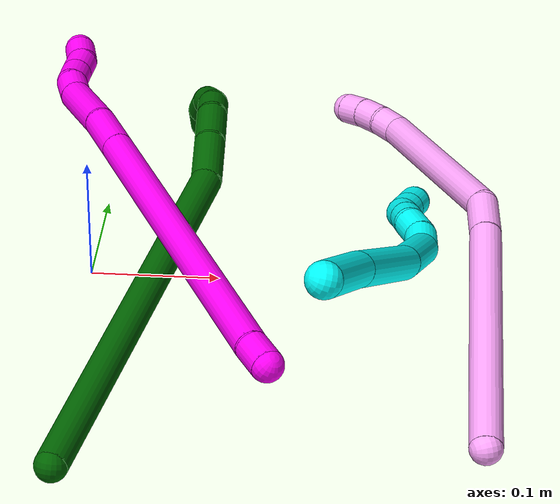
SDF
<sdf version="1.7">
 <world name="default">
  <model name="3">
   <static>0</static>
   <link name="3">
    <collision name="collision-cylinder-e_1_1_4">
     <pose>0.027482 0.028519 0.027199 -0.809089 0.608937 -0.267483</pose>
     <geometry><cylinder><radius>0.0125</radius><length>0.096091</length></cylinder></geometry>
     <surface>
      <friction><ode><mu>1.16</mu><mu2>1.16</mu2><slip1>0</slip1><slip2>0</slip2></ode></friction>
      <contact><ode><kp>1e+06</kp><kd>1</kd><max_vel>0</max_vel><min_depth>0.001</min_depth></ode></contact>
     </surface>
    </collision>
    <visual name="visual-cylinder-e_1_1_4">
     <pose>0.027482 0.028519 0.027199 -0.809089 0.608937 -0.267483</pose>
     <geometry><cylinder><radius>0.0125</radius><length>0.096091</length></cylinder></geometry>
     <material><ambient>0.003922 1 0.996078 1</ambient></material>
    </visual>
    <collision name="collision-cylinder-e_2_4_5">
     <pose>0.095418 0.096668 0.096102 -0.7599 0.612857 -0.251375</pose>
     <geometry><cylinder><radius>0.0125</radius><length>0.140659</length></cylinder></geometry>
     <surface>
      <friction><ode><mu>1.16</mu><mu2>1.16</mu2><slip1>0</slip1><slip2>0</slip2></ode></friction>
      <contact><ode><kp>1e+06</kp><kd>1</kd><max_vel>0</max_vel><min_depth>0.001</min_depth></ode></contact>
     </surface>
    </collision>
    <visual name="visual-cylinder-e_2_4_5">
     <pose>0.095418 0.096668 0.096102 -0.7599 0.612857 -0.251375</pose>
     <geometry><cylinder><radius>0.0125</radius><length>0.140659</length></cylinder></geometry>
     <material><ambient>0.003922 1 0.996078 1</ambient></material>
    </visual>
    <collision name="collision-cylinder-e_3_5_6">
     <pose>0.178878 0.179309 0.171825 -0.901609 0.665047 -0.331266</pose>
     <geometry><cylinder><radius>0.0125</radius><length>0.139383</length></cylinder></geometry>
     <surface>
      <friction><ode><mu>1.16</mu><mu2>1.16</mu2><slip1>0</slip1><slip2>0</slip2></ode></friction>
      <contact><ode><kp>1e+06</kp><kd>1</kd><max_vel>0</max_vel><min_depth>0.001</min_depth></ode></contact>
     </surface>
    </collision>
    <visual name="visual-cylinder-e_3_5_6">
     <pose>0.178878 0.179309 0.171825 -0.901609 0.665047 -0.331266</pose>
     <geometry><cylinder><radius>0.0125</radius><length>0.139383</length></cylinder></geometry>
     <material><ambient>0.003922 1 0.996078 1</ambient></material>
    </visual>
    <collision name="collision-cylinder-e_4_6_7">
     <pose>0.225669 0.231873 0.208207 -1.32835 0.367218 -0.288717</pose>
     <geometry><cylinder><radius>0.0125</radius><length>0.021086</length></cylinder></geometry>
     <surface>
      <friction><ode><mu>1.16</mu><mu2>1.16</mu2><slip1>0</slip1><slip2>0</slip2></ode></friction>
      <contact><ode><kp>1e+06</kp><kd>1</kd><max_vel>0</max_vel><min_depth>0.001</min_depth></ode></contact>
     </surface>
    </collision>
    <visual name="visual-cylinder-e_4_6_7">
     <pose>0.225669 0.231873 0.208207 -1.32835 0.367218 -0.288717</pose>
     <geometry><cylinder><radius>0.0125</radius><length>0.021086</length></cylinder></geometry>
     <material><ambient>0.003922 1 0.996078 1</ambient></material>
    </visual>
    <collision name="collision-cylinder-e_5_7_8">
     <pose>0.235305 0.251058 0.209811 -1.64936 0.544499 -0.586627</pose>
     <geometry><cylinder><radius>0.0125</radius><length>0.022591</length></cylinder></geometry>
     <surface>
      <friction><ode><mu>1.16</mu><mu2>1.16</mu2><slip1>0</slip1><slip2>0</slip2></ode></friction>
      <contact><ode><kp>1e+06</kp><kd>1</kd><max_vel>0</max_vel><min_depth>0.001</min_depth></ode></contact>
     </surface>
    </collision>
    <visual name="visual-cylinder-e_5_7_8">
     <pose>0.235305 0.251058 0.209811 -1.64936 0.544499 -0.586627</pose>
     <geometry><cylinder><radius>0.0125</radius><length>0.022591</length></cylinder></geometry>
     <material><ambient>0.003922 1 0.996078 1</ambient></material>
    </visual>
    <collision name="collision-cylinder-e_6_8_9">
     <pose>0.24747 0.268228 0.211314 -1.2794 0.676135 -0.511717</pose>
     <geometry><cylinder><radius>0.0125</radius><length>0.02018</length></cylinder></geometry>
     <surface>
      <friction><ode><mu>1.16</mu><mu2>1.16</mu2><slip1>0</slip1><slip2>0</slip2></ode></friction>
      <contact><ode><kp>1e+06</kp><kd>1</kd><max_vel>0</max_vel><min_depth>0.001</min_depth></ode></contact>
     </surface>
    </collision>
    <visual name="visual-cylinder-e_6_8_9">
     <pose>0.24747 0.268228 0.211314 -1.2794 0.676135 -0.511717</pose>
     <geometry><cylinder><radius>0.0125</radius><length>0.02018</length></cylinder></geometry>
     <material><ambient>0.003922 1 0.996078 1</ambient></material>
    </visual>
    <collision name="collision-cylinder-e_7_9_10">
     <pose>0.260464 0.282873 0.215802 -1.26699 0.731113 -0.548112</pose>
     <geometry><cylinder><radius>0.0125</radius><length>0.020008</length></cylinder></geometry>
     <surface>
      <friction><ode><mu>1.16</mu><mu2>1.16</mu2><slip1>0</slip1><slip2>0</slip2></ode></friction>
      <contact><ode><kp>1e+06</kp><kd>1</kd><max_vel>0</max_vel><min_depth>0.001</min_depth></ode></contact>
     </surface>
    </collision>
    <visual name="visual-cylinder-e_7_9_10">
     <pose>0.260464 0.282873 0.215802 -1.26699 0.731113 -0.548112</pose>
     <geometry><cylinder><radius>0.0125</radius><length>0.020008</length></cylinder></geometry>
     <material><ambient>0.003922 1 0.996078 1</ambient></material>
    </visual>
    <collision name="collision-cylinder-e_8_10_11">
     <pose>0.271354 0.29714 0.223599 -0.90988 0.434501 -0.215116</pose>
     <geometry><cylinder><radius>0.0125</radius><length>0.020002</length></cylinder></geometry>
     <surface>
      <friction><ode><mu>1.16</mu><mu2>1.16</mu2><slip1>0</slip1><slip2>0</slip2></ode></friction>
      <contact><ode><kp>1e+06</kp><kd>1</kd><max_vel>0</max_vel><min_depth>0.001</min_depth></ode></contact>
     </surface>
    </collision>
    <visual name="visual-cylinder-e_8_10_11">
     <pose>0.271354 0.29714 0.223599 -0.90988 0.434501 -0.215116</pose>
     <geometry><cylinder><radius>0.0125</radius><length>0.020002</length></cylinder></geometry>
     <material><ambient>0.003922 1 0.996078 1</ambient></material>
    </visual>
    <collision name="collision-cylinder-e_9_11_2">
     <pose>0.27967 0.311525 0.234733 -0.914269 0.423082 -0.210488</pose>
     <geometry><cylinder><radius>0.0125</radius><length>0.020001</length></cylinder></geometry>
     <surface>
      <friction><ode><mu>1.16</mu><mu2>1.16</mu2><slip1>0</slip1><slip2>0</slip2></ode></friction>
      <contact><ode><kp>1e+06</kp><kd>1</kd><max_vel>0</max_vel><min_depth>0.001</min_depth></ode></contact>
     </surface>
    </collision>
    <visual name="visual-cylinder-e_9_11_2">
     <pose>0.27967 0.311525 0.234733 -0.914269 0.423082 -0.210488</pose>
     <geometry><cylinder><radius>0.0125</radius><length>0.020001</length></cylinder></geometry>
     <material><ambient>0.003922 1 0.996078 1</ambient></material>
    </visual>
    <collision name="collision-sphere-2">
     <pose>0.283776 0.318748 0.240299 0 -0 0</pose>
     <geometry><sphere><radius>0.0125</radius></sphere></geometry>
     <surface>
      <friction><ode><mu>1.16</mu><mu2>1.16</mu2><slip1>0</slip1><slip2>0</slip2></ode></friction>
      <contact><ode><kp>1e+06</kp><kd>1</kd><max_vel>0</max_vel><min_depth>0.001</min_depth></ode></contact>
     </surface>
    </collision>
    <visual name="visual-sphere-2">
     <pose>0.283776 0.318748 0.240299 0 -0 0</pose>
     <geometry><sphere><radius>0.0125</radius></sphere></geometry>
     <material><ambient>0.003922 1 0.996078 1</ambient></material>
    </visual>
    <collision name="collision-sphere-11">
     <pose>0.275564 0.304302 0.229167 0 -0 0</pose>
     <geometry><sphere><radius>0.0125</radius></sphere></geometry>
     <surface>
      <friction><ode><mu>1.16</mu><mu2>1.16</mu2><slip1>0</slip1><slip2>0</slip2></ode></friction>
      <contact><ode><kp>1e+06</kp><kd>1</kd><max_vel>0</max_vel><min_depth>0.001</min_depth></ode></contact>
     </surface>
    </collision>
    <visual name="visual-sphere-11">
     <pose>0.275564 0.304302 0.229167 0 -0 0</pose>
     <geometry><sphere><radius>0.0125</radius></sphere></geometry>
     <material><ambient>0.003922 1 0.996078 1</ambient></material>
    </visual>
    <collision name="collision-sphere-10">
     <pose>0.267144 0.289979 0.21803 0 -0 0</pose>
     <geometry><sphere><radius>0.0125</radius></sphere></geometry>
     <surface>
      <friction><ode><mu>1.16</mu><mu2>1.16</mu2><slip1>0</slip1><slip2>0</slip2></ode></friction>
      <contact><ode><kp>1e+06</kp><kd>1</kd><max_vel>0</max_vel><min_depth>0.001</min_depth></ode></contact>
     </surface>
    </collision>
    <visual name="visual-sphere-10">
     <pose>0.267144 0.289979 0.21803 0 -0 0</pose>
     <geometry><sphere><radius>0.0125</radius></sphere></geometry>
     <material><ambient>0.003922 1 0.996078 1</ambient></material>
    </visual>
    <collision name="collision-sphere-9">
     <pose>0.253785 0.275767 0.213575 0 -0 0</pose>
     <geometry><sphere><radius>0.0125</radius></sphere></geometry>
     <surface>
      <friction><ode><mu>1.16</mu><mu2>1.16</mu2><slip1>0</slip1><slip2>0</slip2></ode></friction>
      <contact><ode><kp>1e+06</kp><kd>1</kd><max_vel>0</max_vel><min_depth>0.001</min_depth></ode></contact>
     </surface>
    </collision>
    <visual name="visual-sphere-9">
     <pose>0.253785 0.275767 0.213575 0 -0 0</pose>
     <geometry><sphere><radius>0.0125</radius></sphere></geometry>
     <material><ambient>0.003922 1 0.996078 1</ambient></material>
    </visual>
    <collision name="collision-sphere-4">
     <pose>0.054964 0.057038 0.054398 0 -0 0</pose>
     <geometry><sphere><radius>0.0125</radius></sphere></geometry>
     <surface>
      <friction><ode><mu>1.16</mu><mu2>1.16</mu2><slip1>0</slip1><slip2>0</slip2></ode></friction>
      <contact><ode><kp>1e+06</kp><kd>1</kd><max_vel>0</max_vel><min_depth>0.001</min_depth></ode></contact>
     </surface>
    </collision>
    <visual name="visual-sphere-4">
     <pose>0.054964 0.057038 0.054398 0 -0 0</pose>
     <geometry><sphere><radius>0.0125</radius></sphere></geometry>
     <material><ambient>0.003922 1 0.996078 1</ambient></material>
    </visual>
    <collision name="collision-sphere-1">
     <geometry><sphere><radius>0.0125</radius></sphere></geometry>
     <surface>
      <friction><ode><mu>1.16</mu><mu2>1.16</mu2><slip1>0</slip1><slip2>0</slip2></ode></friction>
      <contact><ode><kp>1e+06</kp><kd>1</kd><max_vel>0</max_vel><min_depth>0.001</min_depth></ode></contact>
     </surface>
    </collision>
    <visual name="visual-sphere-1">
     <geometry><sphere><radius>0.0125</radius></sphere></geometry>
     <material><ambient>0.003922 1 0.996078 1</ambient></material>
    </visual>
    <collision name="collision-sphere-8">
     <pose>0.241156 0.26069 0.209053 0 -0 0</pose>
     <geometry><sphere><radius>0.0125</radius></sphere></geometry>
     <surface>
      <friction><ode><mu>1.16</mu><mu2>1.16</mu2><slip1>0</slip1><slip2>0</slip2></ode></friction>
      <contact><ode><kp>1e+06</kp><kd>1</kd><max_vel>0</max_vel><min_depth>0.001</min_depth></ode></contact>
     </surface>
    </collision>
    <visual name="visual-sphere-8">
     <pose>0.241156 0.26069 0.209053 0 -0 0</pose>
     <geometry><sphere><radius>0.0125</radius></sphere></geometry>
     <material><ambient>0.003922 1 0.996078 1</ambient></material>
    </visual>
    <collision name="collision-sphere-5">
     <pose>0.135872 0.136297 0.137806 0 -0 0</pose>
     <geometry><sphere><radius>0.0125</radius></sphere></geometry>
     <surface>
      <friction><ode><mu>1.16</mu><mu2>1.16</mu2><slip1>0</slip1><slip2>0</slip2></ode></friction>
      <contact><ode><kp>1e+06</kp><kd>1</kd><max_vel>0</max_vel><min_depth>0.001</min_depth></ode></contact>
     </surface>
    </collision>
    <visual name="visual-sphere-5">
     <pose>0.135872 0.136297 0.137806 0 -0 0</pose>
     <geometry><sphere><radius>0.0125</radius></sphere></geometry>
     <material><ambient>0.003922 1 0.996078 1</ambient></material>
    </visual>
    <collision name="collision-sphere-6">
     <pose>0.221884 0.222321 0.205844 0 -0 0</pose>
     <geometry><sphere><radius>0.0125</radius></sphere></geometry>
     <surface>
      <friction><ode><mu>1.16</mu><mu2>1.16</mu2><slip1>0</slip1><slip2>0</slip2></ode></friction>
      <contact><ode><kp>1e+06</kp><kd>1</kd><max_vel>0</max_vel><min_depth>0.001</min_depth></ode></contact>
     </surface>
    </collision>
    <visual name="visual-sphere-6">
     <pose>0.221884 0.222321 0.205844 0 -0 0</pose>
     <geometry><sphere><radius>0.0125</radius></sphere></geometry>
     <material><ambient>0.003922 1 0.996078 1</ambient></material>
    </visual>
    <collision name="collision-sphere-7">
     <pose>0.229455 0.241426 0.210569 0 -0 0</pose>
     <geometry><sphere><radius>0.0125</radius></sphere></geometry>
     <surface>
      <friction><ode><mu>1.16</mu><mu2>1.16</mu2><slip1>0</slip1><slip2>0</slip2></ode></friction>
      <contact><ode><kp>1e+06</kp><kd>1</kd><max_vel>0</max_vel><min_depth>0.001</min_depth></ode></contact>
     </surface>
    </collision>
    <visual name="visual-sphere-7">
     <pose>0.229455 0.241426 0.210569 0 -0 0</pose>
     <geometry><sphere><radius>0.0125</radius></sphere></geometry>
     <material><ambient>0.003922 1 0.996078 1</ambient></material>
    </visual>
    <inertial>
     <pose>0.144591 0.150275 0.13392 0 -0 0</pose>
     <mass>0.5</mass>
     <inertia>
      <ixx>0.000324</ixx>
      <ixy>0</ixy>
      <ixz>0</ixz>
      <iyy>0.000324</iyy>
      <iyz>0</iyz>
      <izz>-0.000639</izz>
     </inertia>
    </inertial>
   </link>
   <pose>0.200835 -0.330493 0.230778 2.38797 1.01845 2.59458</pose>
  </model>
  <model name="4">
   <static>0</static>
   <link name="4">
    <collision name="collision-cylinder-e_1_1_4">
     <pose>0.020311 0.104197 -0.046645 -1.9917 0.176075 -0.270771</pose>
     <geometry><cylinder><radius>0.0125</radius><length>0.231908</length></cylinder></geometry>
     <surface>
      <friction><ode><mu>1.16</mu><mu2>1.16</mu2><slip1>0</slip1><slip2>0</slip2></ode></friction>
      <contact><ode><kp>1e+06</kp><kd>1</kd><max_vel>0</max_vel><min_depth>0.001</min_depth></ode></contact>
     </surface>
    </collision>
    <visual name="visual-cylinder-e_1_1_4">
     <pose>0.020311 0.104197 -0.046645 -1.9917 0.176075 -0.270771</pose>
     <geometry><cylinder><radius>0.0125</radius><length>0.231908</length></cylinder></geometry>
     <material><ambient>1 0.65098 0.996078 1</ambient></material>
    </visual>
    <collision name="collision-cylinder-e_2_4_5">
     <pose>0.043218 0.226032 -0.099822 -1.92549 0.137112 -0.196667</pose>
     <geometry><cylinder><radius>0.0125</radius><length>0.037973</length></cylinder></geometry>
     <surface>
      <friction><ode><mu>1.16</mu><mu2>1.16</mu2><slip1>0</slip1><slip2>0</slip2></ode></friction>
      <contact><ode><kp>1e+06</kp><kd>1</kd><max_vel>0</max_vel><min_depth>0.001</min_depth></ode></contact>
     </surface>
    </collision>
    <visual name="visual-cylinder-e_2_4_5">
     <pose>0.043218 0.226032 -0.099822 -1.92549 0.137112 -0.196667</pose>
     <geometry><cylinder><radius>0.0125</radius><length>0.037973</length></cylinder></geometry>
     <material><ambient>1 0.65098 0.996078 1</ambient></material>
    </visual>
    <collision name="collision-cylinder-e_3_5_6">
     <pose>0.037438 0.326923 -0.10557 -1.56138 -0.100253 0.099315</pose>
     <geometry><cylinder><radius>0.0125</radius><length>0.167356</length></cylinder></geometry>
     <surface>
      <friction><ode><mu>1.16</mu><mu2>1.16</mu2><slip1>0</slip1><slip2>0</slip2></ode></friction>
      <contact><ode><kp>1e+06</kp><kd>1</kd><max_vel>0</max_vel><min_depth>0.001</min_depth></ode></contact>
     </surface>
    </collision>
    <visual name="visual-cylinder-e_3_5_6">
     <pose>0.037438 0.326923 -0.10557 -1.56138 -0.100253 0.099315</pose>
     <geometry><cylinder><radius>0.0125</radius><length>0.167356</length></cylinder></geometry>
     <material><ambient>1 0.65098 0.996078 1</ambient></material>
    </visual>
    <collision name="collision-cylinder-e_4_6_7">
     <pose>0.030039 0.419555 -0.101129 -1.19893 0.096662 -0.066081</pose>
     <geometry><cylinder><radius>0.0125</radius><length>0.020225</length></cylinder></geometry>
     <surface>
      <friction><ode><mu>1.16</mu><mu2>1.16</mu2><slip1>0</slip1><slip2>0</slip2></ode></friction>
      <contact><ode><kp>1e+06</kp><kd>1</kd><max_vel>0</max_vel><min_depth>0.001</min_depth></ode></contact>
     </surface>
    </collision>
    <visual name="visual-cylinder-e_4_6_7">
     <pose>0.030039 0.419555 -0.101129 -1.19893 0.096662 -0.066081</pose>
     <geometry><cylinder><radius>0.0125</radius><length>0.020225</length></cylinder></geometry>
     <material><ambient>1 0.65098 0.996078 1</ambient></material>
    </visual>
    <collision name="collision-cylinder-e_5_7_8">
     <pose>0.030185 0.439464 -0.094229 -1.27219 -0.075178 0.05553</pose>
     <geometry><cylinder><radius>0.0125</radius><length>0.022103</length></cylinder></geometry>
     <surface>
      <friction><ode><mu>1.16</mu><mu2>1.16</mu2><slip1>0</slip1><slip2>0</slip2></ode></friction>
      <contact><ode><kp>1e+06</kp><kd>1</kd><max_vel>0</max_vel><min_depth>0.001</min_depth></ode></contact>
     </surface>
    </collision>
    <visual name="visual-cylinder-e_5_7_8">
     <pose>0.030185 0.439464 -0.094229 -1.27219 -0.075178 0.05553</pose>
     <geometry><cylinder><radius>0.0125</radius><length>0.022103</length></cylinder></geometry>
     <material><ambient>1 0.65098 0.996078 1</ambient></material>
    </visual>
    <collision name="collision-cylinder-e_6_8_2">
     <pose>0.027856 0.459346 -0.087146 -1.18091 -0.147209 0.098759</pose>
     <geometry><cylinder><radius>0.0125</radius><length>0.020436</length></cylinder></geometry>
     <surface>
      <friction><ode><mu>1.16</mu><mu2>1.16</mu2><slip1>0</slip1><slip2>0</slip2></ode></friction>
      <contact><ode><kp>1e+06</kp><kd>1</kd><max_vel>0</max_vel><min_depth>0.001</min_depth></ode></contact>
     </surface>
    </collision>
    <visual name="visual-cylinder-e_6_8_2">
     <pose>0.027856 0.459346 -0.087146 -1.18091 -0.147209 0.098759</pose>
     <geometry><cylinder><radius>0.0125</radius><length>0.020436</length></cylinder></geometry>
     <material><ambient>1 0.65098 0.996078 1</ambient></material>
    </visual>
    <collision name="collision-sphere-2">
     <pose>0.026357 0.468695 -0.083304 0 -0 0</pose>
     <geometry><sphere><radius>0.0125</radius></sphere></geometry>
     <surface>
      <friction><ode><mu>1.16</mu><mu2>1.16</mu2><slip1>0</slip1><slip2>0</slip2></ode></friction>
      <contact><ode><kp>1e+06</kp><kd>1</kd><max_vel>0</max_vel><min_depth>0.001</min_depth></ode></contact>
     </surface>
    </collision>
    <visual name="visual-sphere-2">
     <pose>0.026357 0.468695 -0.083304 0 -0 0</pose>
     <geometry><sphere><radius>0.0125</radius></sphere></geometry>
     <material><ambient>1 0.65098 0.996078 1</ambient></material>
    </visual>
    <collision name="collision-sphere-4">
     <pose>0.040623 0.208394 -0.09329 0 -0 0</pose>
     <geometry><sphere><radius>0.0125</radius></sphere></geometry>
     <surface>
      <friction><ode><mu>1.16</mu><mu2>1.16</mu2><slip1>0</slip1><slip2>0</slip2></ode></friction>
      <contact><ode><kp>1e+06</kp><kd>1</kd><max_vel>0</max_vel><min_depth>0.001</min_depth></ode></contact>
     </surface>
    </collision>
    <visual name="visual-sphere-4">
     <pose>0.040623 0.208394 -0.09329 0 -0 0</pose>
     <geometry><sphere><radius>0.0125</radius></sphere></geometry>
     <material><ambient>1 0.65098 0.996078 1</ambient></material>
    </visual>
    <collision name="collision-sphere-1">
     <geometry><sphere><radius>0.0125</radius></sphere></geometry>
     <surface>
      <friction><ode><mu>1.16</mu><mu2>1.16</mu2><slip1>0</slip1><slip2>0</slip2></ode></friction>
      <contact><ode><kp>1e+06</kp><kd>1</kd><max_vel>0</max_vel><min_depth>0.001</min_depth></ode></contact>
     </surface>
    </collision>
    <visual name="visual-sphere-1">
     <geometry><sphere><radius>0.0125</radius></sphere></geometry>
     <material><ambient>1 0.65098 0.996078 1</ambient></material>
    </visual>
    <collision name="collision-sphere-8">
     <pose>0.029355 0.449997 -0.090987 0 -0 0</pose>
     <geometry><sphere><radius>0.0125</radius></sphere></geometry>
     <surface>
      <friction><ode><mu>1.16</mu><mu2>1.16</mu2><slip1>0</slip1><slip2>0</slip2></ode></friction>
      <contact><ode><kp>1e+06</kp><kd>1</kd><max_vel>0</max_vel><min_depth>0.001</min_depth></ode></contact>
     </surface>
    </collision>
    <visual name="visual-sphere-8">
     <pose>0.029355 0.449997 -0.090987 0 -0 0</pose>
     <geometry><sphere><radius>0.0125</radius></sphere></geometry>
     <material><ambient>1 0.65098 0.996078 1</ambient></material>
    </visual>
    <collision name="collision-sphere-5">
     <pose>0.045813 0.243669 -0.106354 0 -0 0</pose>
     <geometry><sphere><radius>0.0125</radius></sphere></geometry>
     <surface>
      <friction><ode><mu>1.16</mu><mu2>1.16</mu2><slip1>0</slip1><slip2>0</slip2></ode></friction>
      <contact><ode><kp>1e+06</kp><kd>1</kd><max_vel>0</max_vel><min_depth>0.001</min_depth></ode></contact>
     </surface>
    </collision>
    <visual name="visual-sphere-5">
     <pose>0.045813 0.243669 -0.106354 0 -0 0</pose>
     <geometry><sphere><radius>0.0125</radius></sphere></geometry>
     <material><ambient>1 0.65098 0.996078 1</ambient></material>
    </visual>
    <collision name="collision-sphere-6">
     <pose>0.029063 0.410177 -0.104786 0 -0 0</pose>
     <geometry><sphere><radius>0.0125</radius></sphere></geometry>
     <surface>
      <friction><ode><mu>1.16</mu><mu2>1.16</mu2><slip1>0</slip1><slip2>0</slip2></ode></friction>
      <contact><ode><kp>1e+06</kp><kd>1</kd><max_vel>0</max_vel><min_depth>0.001</min_depth></ode></contact>
     </surface>
    </collision>
    <visual name="visual-sphere-6">
     <pose>0.029063 0.410177 -0.104786 0 -0 0</pose>
     <geometry><sphere><radius>0.0125</radius></sphere></geometry>
     <material><ambient>1 0.65098 0.996078 1</ambient></material>
    </visual>
    <collision name="collision-sphere-7">
     <pose>0.031015 0.428932 -0.097471 0 -0 0</pose>
     <geometry><sphere><radius>0.0125</radius></sphere></geometry>
     <surface>
      <friction><ode><mu>1.16</mu><mu2>1.16</mu2><slip1>0</slip1><slip2>0</slip2></ode></friction>
      <contact><ode><kp>1e+06</kp><kd>1</kd><max_vel>0</max_vel><min_depth>0.001</min_depth></ode></contact>
     </surface>
    </collision>
    <visual name="visual-sphere-7">
     <pose>0.031015 0.428932 -0.097471 0 -0 0</pose>
     <geometry><sphere><radius>0.0125</radius></sphere></geometry>
     <material><ambient>1 0.65098 0.996078 1</ambient></material>
    </visual>
    <inertial>
     <pose>0.028922 0.230091 -0.076369 0 -0 0</pose>
     <mass>0.5</mass>
     <inertia>
      <ixx>0.001163</ixx>
      <ixy>0</ixy>
      <ixz>0</ixz>
      <iyy>-0.000562</iyy>
      <iyz>0</iyz>
      <izz>-0.001498</izz>
     </inertia>
    </inertial>
   </link>
   <pose>0.309898 -0.211653 0.011496 -1.45811 -1.51538 1.8931</pose>
  </model>
  <model name="6">
   <static>0</static>
   <link name="6">
    <collision name="collision-cylinder-e_1_1_4">
     <pose>0.009057 0.149284 0.080232 -1.07764 0.053387 -0.031921</pose>
     <geometry><cylinder><radius>0.0125</radius><length>0.339441</length></cylinder></geometry>
     <surface>
      <friction><ode><mu>1.16</mu><mu2>1.16</mu2><slip1>0</slip1><slip2>0</slip2></ode></friction>
      <contact><ode><kp>1e+06</kp><kd>1</kd><max_vel>0</max_vel><min_depth>0.001</min_depth></ode></contact>
     </surface>
    </collision>
    <visual name="visual-cylinder-e_1_1_4">
     <pose>0.009057 0.149284 0.080232 -1.07764 0.053387 -0.031921</pose>
     <geometry><cylinder><radius>0.0125</radius><length>0.339441</length></cylinder></geometry>
     <material><ambient>0 0.392157 0.003922 1</ambient></material>
    </visual>
    <collision name="collision-cylinder-e_2_4_5">
     <pose>0.013978 0.31484 0.17352 -0.894599 -0.195711 0.094119</pose>
     <geometry><cylinder><radius>0.0125</radius><length>0.042534</length></cylinder></geometry>
     <surface>
      <friction><ode><mu>1.16</mu><mu2>1.16</mu2><slip1>0</slip1><slip2>0</slip2></ode></friction>
      <contact><ode><kp>1e+06</kp><kd>1</kd><max_vel>0</max_vel><min_depth>0.001</min_depth></ode></contact>
     </surface>
    </collision>
    <visual name="visual-cylinder-e_2_4_5">
     <pose>0.013978 0.31484 0.17352 -0.894599 -0.195711 0.094119</pose>
     <geometry><cylinder><radius>0.0125</radius><length>0.042534</length></cylinder></geometry>
     <material><ambient>0 0.392157 0.003922 1</ambient></material>
    </visual>
    <collision name="collision-cylinder-e_3_5_6">
     <pose>0.005919 0.3464 0.195013 -1.06656 -0.220948 0.130779</pose>
     <geometry><cylinder><radius>0.0125</radius><length>0.035796</length></cylinder></geometry>
     <surface>
      <friction><ode><mu>1.16</mu><mu2>1.16</mu2><slip1>0</slip1><slip2>0</slip2></ode></friction>
      <contact><ode><kp>1e+06</kp><kd>1</kd><max_vel>0</max_vel><min_depth>0.001</min_depth></ode></contact>
     </surface>
    </collision>
    <visual name="visual-cylinder-e_3_5_6">
     <pose>0.005919 0.3464 0.195013 -1.06656 -0.220948 0.130779</pose>
     <geometry><cylinder><radius>0.0125</radius><length>0.035796</length></cylinder></geometry>
     <material><ambient>0 0.392157 0.003922 1</ambient></material>
    </visual>
    <collision name="collision-cylinder-e_4_6_7">
     <pose>-0.000422 0.371706 0.206385 -1.2857 -0.227747 0.170903</pose>
     <geometry><cylinder><radius>0.0125</radius><length>0.021429</length></cylinder></geometry>
     <surface>
      <friction><ode><mu>1.16</mu><mu2>1.16</mu2><slip1>0</slip1><slip2>0</slip2></ode></friction>
      <contact><ode><kp>1e+06</kp><kd>1</kd><max_vel>0</max_vel><min_depth>0.001</min_depth></ode></contact>
     </surface>
    </collision>
    <visual name="visual-cylinder-e_4_6_7">
     <pose>-0.000422 0.371706 0.206385 -1.2857 -0.227747 0.170903</pose>
     <geometry><cylinder><radius>0.0125</radius><length>0.021429</length></cylinder></geometry>
     <material><ambient>0 0.392157 0.003922 1</ambient></material>
    </visual>
    <collision name="collision-cylinder-e_5_7_8">
     <pose>-0.00736 0.390897 0.208923 -1.61411 -0.457295 0.476801</pose>
     <geometry><cylinder><radius>0.0125</radius><length>0.02047</length></cylinder></geometry>
     <surface>
      <friction><ode><mu>1.16</mu><mu2>1.16</mu2><slip1>0</slip1><slip2>0</slip2></ode></friction>
      <contact><ode><kp>1e+06</kp><kd>1</kd><max_vel>0</max_vel><min_depth>0.001</min_depth></ode></contact>
     </surface>
    </collision>
    <visual name="visual-cylinder-e_5_7_8">
     <pose>-0.00736 0.390897 0.208923 -1.61411 -0.457295 0.476801</pose>
     <geometry><cylinder><radius>0.0125</radius><length>0.02047</length></cylinder></geometry>
     <material><ambient>0 0.392157 0.003922 1</ambient></material>
    </visual>
    <collision name="collision-cylinder-e_6_8_9">
     <pose>-0.015239 0.40809 0.203305 -2.14791 -0.337742 0.609311</pose>
     <geometry><cylinder><radius>0.0125</radius><length>0.020282</length></cylinder></geometry>
     <surface>
      <friction><ode><mu>1.16</mu><mu2>1.16</mu2><slip1>0</slip1><slip2>0</slip2></ode></friction>
      <contact><ode><kp>1e+06</kp><kd>1</kd><max_vel>0</max_vel><min_depth>0.001</min_depth></ode></contact>
     </surface>
    </collision>
    <visual name="visual-cylinder-e_6_8_9">
     <pose>-0.015239 0.40809 0.203305 -2.14791 -0.337742 0.609311</pose>
     <geometry><cylinder><radius>0.0125</radius><length>0.020282</length></cylinder></geometry>
     <material><ambient>0 0.392157 0.003922 1</ambient></material>
    </visual>
    <collision name="collision-cylinder-e_7_9_2">
     <pose>-0.018696 0.423335 0.191138 -2.33641 -0.009599 0.022539</pose>
     <geometry><cylinder><radius>0.0125</radius><length>0.020049</length></cylinder></geometry>
     <surface>
      <friction><ode><mu>1.16</mu><mu2>1.16</mu2><slip1>0</slip1><slip2>0</slip2></ode></friction>
      <contact><ode><kp>1e+06</kp><kd>1</kd><max_vel>0</max_vel><min_depth>0.001</min_depth></ode></contact>
     </surface>
    </collision>
    <visual name="visual-cylinder-e_7_9_2">
     <pose>-0.018696 0.423335 0.191138 -2.33641 -0.009599 0.022539</pose>
     <geometry><cylinder><radius>0.0125</radius><length>0.020049</length></cylinder></geometry>
     <material><ambient>0 0.392157 0.003922 1</ambient></material>
    </visual>
    <collision name="collision-sphere-2">
     <pose>-0.018792 0.430562 0.184192 0 -0 0</pose>
     <geometry><sphere><radius>0.0125</radius></sphere></geometry>
     <surface>
      <friction><ode><mu>1.16</mu><mu2>1.16</mu2><slip1>0</slip1><slip2>0</slip2></ode></friction>
      <contact><ode><kp>1e+06</kp><kd>1</kd><max_vel>0</max_vel><min_depth>0.001</min_depth></ode></contact>
     </surface>
    </collision>
    <visual name="visual-sphere-2">
     <pose>-0.018792 0.430562 0.184192 0 -0 0</pose>
     <geometry><sphere><radius>0.0125</radius></sphere></geometry>
     <material><ambient>0 0.392157 0.003922 1</ambient></material>
    </visual>
    <collision name="collision-sphere-9">
     <pose>-0.0186 0.416108 0.198085 0 -0 0</pose>
     <geometry><sphere><radius>0.0125</radius></sphere></geometry>
     <surface>
      <friction><ode><mu>1.16</mu><mu2>1.16</mu2><slip1>0</slip1><slip2>0</slip2></ode></friction>
      <contact><ode><kp>1e+06</kp><kd>1</kd><max_vel>0</max_vel><min_depth>0.001</min_depth></ode></contact>
     </surface>
    </collision>
    <visual name="visual-sphere-9">
     <pose>-0.0186 0.416108 0.198085 0 -0 0</pose>
     <geometry><sphere><radius>0.0125</radius></sphere></geometry>
     <material><ambient>0 0.392157 0.003922 1</ambient></material>
    </visual>
    <collision name="collision-sphere-4">
     <pose>0.018113 0.298569 0.160464 0 -0 0</pose>
     <geometry><sphere><radius>0.0125</radius></sphere></geometry>
     <surface>
      <friction><ode><mu>1.16</mu><mu2>1.16</mu2><slip1>0</slip1><slip2>0</slip2></ode></friction>
      <contact><ode><kp>1e+06</kp><kd>1</kd><max_vel>0</max_vel><min_depth>0.001</min_depth></ode></contact>
     </surface>
    </collision>
    <visual name="visual-sphere-4">
     <pose>0.018113 0.298569 0.160464 0 -0 0</pose>
     <geometry><sphere><radius>0.0125</radius></sphere></geometry>
     <material><ambient>0 0.392157 0.003922 1</ambient></material>
    </visual>
    <collision name="collision-sphere-1">
     <geometry><sphere><radius>0.0125</radius></sphere></geometry>
     <surface>
      <friction><ode><mu>1.16</mu><mu2>1.16</mu2><slip1>0</slip1><slip2>0</slip2></ode></friction>
      <contact><ode><kp>1e+06</kp><kd>1</kd><max_vel>0</max_vel><min_depth>0.001</min_depth></ode></contact>
     </surface>
    </collision>
    <visual name="visual-sphere-1">
     <geometry><sphere><radius>0.0125</radius></sphere></geometry>
     <material><ambient>0 0.392157 0.003922 1</ambient></material>
    </visual>
    <collision name="collision-sphere-8">
     <pose>-0.011879 0.400071 0.208525 0 -0 0</pose>
     <geometry><sphere><radius>0.0125</radius></sphere></geometry>
     <surface>
      <friction><ode><mu>1.16</mu><mu2>1.16</mu2><slip1>0</slip1><slip2>0</slip2></ode></friction>
      <contact><ode><kp>1e+06</kp><kd>1</kd><max_vel>0</max_vel><min_depth>0.001</min_depth></ode></contact>
     </surface>
    </collision>
    <visual name="visual-sphere-8">
     <pose>-0.011879 0.400071 0.208525 0 -0 0</pose>
     <geometry><sphere><radius>0.0125</radius></sphere></geometry>
     <material><ambient>0 0.392157 0.003922 1</ambient></material>
    </visual>
    <collision name="collision-sphere-5">
     <pose>0.009842 0.331111 0.186576 0 -0 0</pose>
     <geometry><sphere><radius>0.0125</radius></sphere></geometry>
     <surface>
      <friction><ode><mu>1.16</mu><mu2>1.16</mu2><slip1>0</slip1><slip2>0</slip2></ode></friction>
      <contact><ode><kp>1e+06</kp><kd>1</kd><max_vel>0</max_vel><min_depth>0.001</min_depth></ode></contact>
     </surface>
    </collision>
    <visual name="visual-sphere-5">
     <pose>0.009842 0.331111 0.186576 0 -0 0</pose>
     <geometry><sphere><radius>0.0125</radius></sphere></geometry>
     <material><ambient>0 0.392157 0.003922 1</ambient></material>
    </visual>
    <collision name="collision-sphere-6">
     <pose>0.001997 0.361689 0.203449 0 -0 0</pose>
     <geometry><sphere><radius>0.0125</radius></sphere></geometry>
     <surface>
      <friction><ode><mu>1.16</mu><mu2>1.16</mu2><slip1>0</slip1><slip2>0</slip2></ode></friction>
      <contact><ode><kp>1e+06</kp><kd>1</kd><max_vel>0</max_vel><min_depth>0.001</min_depth></ode></contact>
     </surface>
    </collision>
    <visual name="visual-sphere-6">
     <pose>0.001997 0.361689 0.203449 0 -0 0</pose>
     <geometry><sphere><radius>0.0125</radius></sphere></geometry>
     <material><ambient>0 0.392157 0.003922 1</ambient></material>
    </visual>
    <collision name="collision-sphere-7">
     <pose>-0.002841 0.381722 0.209321 0 -0 0</pose>
     <geometry><sphere><radius>0.0125</radius></sphere></geometry>
     <surface>
      <friction><ode><mu>1.16</mu><mu2>1.16</mu2><slip1>0</slip1><slip2>0</slip2></ode></friction>
      <contact><ode><kp>1e+06</kp><kd>1</kd><max_vel>0</max_vel><min_depth>0.001</min_depth></ode></contact>
     </surface>
    </collision>
    <visual name="visual-sphere-7">
     <pose>-0.002841 0.381722 0.209321 0 -0 0</pose>
     <geometry><sphere><radius>0.0125</radius></sphere></geometry>
     <material><ambient>0 0.392157 0.003922 1</ambient></material>
    </visual>
    <inertial>
     <pose>0.006074 0.21839 0.1165 0 -0 0</pose>
     <mass>0.5</mass>
     <inertia>
      <ixx>0.003182</ixx>
      <ixy>0</ixy>
      <ixz>0</ixz>
      <iyy>0.001493</iyy>
      <iyz>0</iyz>
      <izz>-0.00305</izz>
     </inertia>
    </inertial>
   </link>
   <pose>0.007522 -0.254651 0.011498 -0.400247 0.021855 -0.169879</pose>
  </model>
  <model name="10">
   <static>0</static>
   <link name="10">
    <collision name="collision-cylinder-e_1_1_4">
     <pose>-0.004727 0.009285 -0.005214 -2.08247 -0.41776 0.694901</pose>
     <geometry><cylinder><radius>0.0125</radius><length>0.023302</length></cylinder></geometry>
     <surface>
      <friction><ode><mu>1.16</mu><mu2>1.16</mu2><slip1>0</slip1><slip2>0</slip2></ode></friction>
      <contact><ode><kp>1e+06</kp><kd>1</kd><max_vel>0</max_vel><min_depth>0.001</min_depth></ode></contact>
     </surface>
    </collision>
    <visual name="visual-cylinder-e_1_1_4">
     <pose>-0.004727 0.009285 -0.005214 -2.08247 -0.41776 0.694901</pose>
     <geometry><cylinder><radius>0.0125</radius><length>0.023302</length></cylinder></geometry>
     <material><ambient>1 0 0.964706 1</ambient></material>
    </visual>
    <collision name="collision-cylinder-e_2_4_5">
     <pose>-0.047863 0.137286 -0.08199 -2.11327 -0.270305 0.4725</pose>
     <geometry><cylinder><radius>0.0125</radius><length>0.287679</length></cylinder></geometry>
     <surface>
      <friction><ode><mu>1.16</mu><mu2>1.16</mu2><slip1>0</slip1><slip2>0</slip2></ode></friction>
      <contact><ode><kp>1e+06</kp><kd>1</kd><max_vel>0</max_vel><min_depth>0.001</min_depth></ode></contact>
     </surface>
    </collision>
    <visual name="visual-cylinder-e_2_4_5">
     <pose>-0.047863 0.137286 -0.08199 -2.11327 -0.270305 0.4725</pose>
     <geometry><cylinder><radius>0.0125</radius><length>0.287679</length></cylinder></geometry>
     <material><ambient>1 0 0.964706 1</ambient></material>
    </visual>
    <collision name="collision-cylinder-e_3_5_6">
     <pose>-0.09204 0.273375 -0.163912 -2.10853 -0.277788 0.482669</pose>
     <geometry><cylinder><radius>0.0125</radius><length>0.042067</length></cylinder></geometry>
     <surface>
      <friction><ode><mu>1.16</mu><mu2>1.16</mu2><slip1>0</slip1><slip2>0</slip2></ode></friction>
      <contact><ode><kp>1e+06</kp><kd>1</kd><max_vel>0</max_vel><min_depth>0.001</min_depth></ode></contact>
     </surface>
    </collision>
    <visual name="visual-cylinder-e_3_5_6">
     <pose>-0.09204 0.273375 -0.163912 -2.10853 -0.277788 0.482669</pose>
     <geometry><cylinder><radius>0.0125</radius><length>0.042067</length></cylinder></geometry>
     <material><ambient>1 0 0.964706 1</ambient></material>
    </visual>
    <collision name="collision-cylinder-e_4_6_7">
     <pose>-0.104078 0.315444 -0.194261 -2.25124 -0.194839 0.404074</pose>
     <geometry><cylinder><radius>0.0125</radius><length>0.06477</length></cylinder></geometry>
     <surface>
      <friction><ode><mu>1.16</mu><mu2>1.16</mu2><slip1>0</slip1><slip2>0</slip2></ode></friction>
      <contact><ode><kp>1e+06</kp><kd>1</kd><max_vel>0</max_vel><min_depth>0.001</min_depth></ode></contact>
     </surface>
    </collision>
    <visual name="visual-cylinder-e_4_6_7">
     <pose>-0.104078 0.315444 -0.194261 -2.25124 -0.194839 0.404074</pose>
     <geometry><cylinder><radius>0.0125</radius><length>0.06477</length></cylinder></geometry>
     <material><ambient>1 0 0.964706 1</ambient></material>
    </visual>
    <collision name="collision-cylinder-e_5_7_8">
     <pose>-0.111927 0.349341 -0.218464 -2.00029 -0.154801 0.240483</pose>
     <geometry><cylinder><radius>0.0125</radius><length>0.020485</length></cylinder></geometry>
     <surface>
      <friction><ode><mu>1.16</mu><mu2>1.16</mu2><slip1>0</slip1><slip2>0</slip2></ode></friction>
      <contact><ode><kp>1e+06</kp><kd>1</kd><max_vel>0</max_vel><min_depth>0.001</min_depth></ode></contact>
     </surface>
    </collision>
    <visual name="visual-cylinder-e_5_7_8">
     <pose>-0.111927 0.349341 -0.218464 -2.00029 -0.154801 0.240483</pose>
     <geometry><cylinder><radius>0.0125</radius><length>0.020485</length></cylinder></geometry>
     <material><ambient>1 0 0.964706 1</ambient></material>
    </visual>
    <collision name="collision-cylinder-e_6_8_9">
     <pose>-0.111197 0.367904 -0.226835 -1.98858 0.221682 -0.33907</pose>
     <geometry><cylinder><radius>0.0125</radius><length>0.021001</length></cylinder></geometry>
     <surface>
      <friction><ode><mu>1.16</mu><mu2>1.16</mu2><slip1>0</slip1><slip2>0</slip2></ode></friction>
      <contact><ode><kp>1e+06</kp><kd>1</kd><max_vel>0</max_vel><min_depth>0.001</min_depth></ode></contact>
     </surface>
    </collision>
    <visual name="visual-cylinder-e_6_8_9">
     <pose>-0.111197 0.367904 -0.226835 -1.98858 0.221682 -0.33907</pose>
     <geometry><cylinder><radius>0.0125</radius><length>0.021001</length></cylinder></geometry>
     <material><ambient>1 0 0.964706 1</ambient></material>
    </visual>
    <collision name="collision-cylinder-e_7_9_10">
     <pose>-0.106497 0.386648 -0.234027 -1.88382 0.237893 -0.325682</pose>
     <geometry><cylinder><radius>0.0125</radius><length>0.020293</length></cylinder></geometry>
     <surface>
      <friction><ode><mu>1.16</mu><mu2>1.16</mu2><slip1>0</slip1><slip2>0</slip2></ode></friction>
      <contact><ode><kp>1e+06</kp><kd>1</kd><max_vel>0</max_vel><min_depth>0.001</min_depth></ode></contact>
     </surface>
    </collision>
    <visual name="visual-cylinder-e_7_9_10">
     <pose>-0.106497 0.386648 -0.234027 -1.88382 0.237893 -0.325682</pose>
     <geometry><cylinder><radius>0.0125</radius><length>0.020293</length></cylinder></geometry>
     <material><ambient>1 0 0.964706 1</ambient></material>
    </visual>
    <collision name="collision-cylinder-e_8_10_2">
     <pose>-0.104879 0.405346 -0.241147 -1.9839 -0.075786 0.115892</pose>
     <geometry><cylinder><radius>0.0125</radius><length>0.020403</length></cylinder></geometry>
     <surface>
      <friction><ode><mu>1.16</mu><mu2>1.16</mu2><slip1>0</slip1><slip2>0</slip2></ode></friction>
      <contact><ode><kp>1e+06</kp><kd>1</kd><max_vel>0</max_vel><min_depth>0.001</min_depth></ode></contact>
     </surface>
    </collision>
    <visual name="visual-cylinder-e_8_10_2">
     <pose>-0.104879 0.405346 -0.241147 -1.9839 -0.075786 0.115892</pose>
     <geometry><cylinder><radius>0.0125</radius><length>0.020403</length></cylinder></geometry>
     <material><ambient>1 0 0.964706 1</ambient></material>
    </visual>
    <collision name="collision-sphere-2">
     <pose>-0.105651 0.414663 -0.245231 0 -0 0</pose>
     <geometry><sphere><radius>0.0125</radius></sphere></geometry>
     <surface>
      <friction><ode><mu>1.16</mu><mu2>1.16</mu2><slip1>0</slip1><slip2>0</slip2></ode></friction>
      <contact><ode><kp>1e+06</kp><kd>1</kd><max_vel>0</max_vel><min_depth>0.001</min_depth></ode></contact>
     </surface>
    </collision>
    <visual name="visual-sphere-2">
     <pose>-0.105651 0.414663 -0.245231 0 -0 0</pose>
     <geometry><sphere><radius>0.0125</radius></sphere></geometry>
     <material><ambient>1 0 0.964706 1</ambient></material>
    </visual>
    <collision name="collision-sphere-10">
     <pose>-0.104106 0.39603 -0.237064 0 -0 0</pose>
     <geometry><sphere><radius>0.0125</radius></sphere></geometry>
     <surface>
      <friction><ode><mu>1.16</mu><mu2>1.16</mu2><slip1>0</slip1><slip2>0</slip2></ode></friction>
      <contact><ode><kp>1e+06</kp><kd>1</kd><max_vel>0</max_vel><min_depth>0.001</min_depth></ode></contact>
     </surface>
    </collision>
    <visual name="visual-sphere-10">
     <pose>-0.104106 0.39603 -0.237064 0 -0 0</pose>
     <geometry><sphere><radius>0.0125</radius></sphere></geometry>
     <material><ambient>1 0 0.964706 1</ambient></material>
    </visual>
    <collision name="collision-sphere-9">
     <pose>-0.108888 0.377267 -0.230991 0 -0 0</pose>
     <geometry><sphere><radius>0.0125</radius></sphere></geometry>
     <surface>
      <friction><ode><mu>1.16</mu><mu2>1.16</mu2><slip1>0</slip1><slip2>0</slip2></ode></friction>
      <contact><ode><kp>1e+06</kp><kd>1</kd><max_vel>0</max_vel><min_depth>0.001</min_depth></ode></contact>
     </surface>
    </collision>
    <visual name="visual-sphere-9">
     <pose>-0.108888 0.377267 -0.230991 0 -0 0</pose>
     <geometry><sphere><radius>0.0125</radius></sphere></geometry>
     <material><ambient>1 0 0.964706 1</ambient></material>
    </visual>
    <collision name="collision-sphere-4">
     <pose>-0.009454 0.01857 -0.010428 0 -0 0</pose>
     <geometry><sphere><radius>0.0125</radius></sphere></geometry>
     <surface>
      <friction><ode><mu>1.16</mu><mu2>1.16</mu2><slip1>0</slip1><slip2>0</slip2></ode></friction>
      <contact><ode><kp>1e+06</kp><kd>1</kd><max_vel>0</max_vel><min_depth>0.001</min_depth></ode></contact>
     </surface>
    </collision>
    <visual name="visual-sphere-4">
     <pose>-0.009454 0.01857 -0.010428 0 -0 0</pose>
     <geometry><sphere><radius>0.0125</radius></sphere></geometry>
     <material><ambient>1 0 0.964706 1</ambient></material>
    </visual>
    <collision name="collision-sphere-1">
     <geometry><sphere><radius>0.0125</radius></sphere></geometry>
     <surface>
      <friction><ode><mu>1.16</mu><mu2>1.16</mu2><slip1>0</slip1><slip2>0</slip2></ode></friction>
      <contact><ode><kp>1e+06</kp><kd>1</kd><max_vel>0</max_vel><min_depth>0.001</min_depth></ode></contact>
     </surface>
    </collision>
    <visual name="visual-sphere-1">
     <geometry><sphere><radius>0.0125</radius></sphere></geometry>
     <material><ambient>1 0 0.964706 1</ambient></material>
    </visual>
    <collision name="collision-sphere-8">
     <pose>-0.113506 0.358542 -0.222678 0 -0 0</pose>
     <geometry><sphere><radius>0.0125</radius></sphere></geometry>
     <surface>
      <friction><ode><mu>1.16</mu><mu2>1.16</mu2><slip1>0</slip1><slip2>0</slip2></ode></friction>
      <contact><ode><kp>1e+06</kp><kd>1</kd><max_vel>0</max_vel><min_depth>0.001</min_depth></ode></contact>
     </surface>
    </collision>
    <visual name="visual-sphere-8">
     <pose>-0.113506 0.358542 -0.222678 0 -0 0</pose>
     <geometry><sphere><radius>0.0125</radius></sphere></geometry>
     <material><ambient>1 0 0.964706 1</ambient></material>
    </visual>
    <collision name="collision-sphere-5">
     <pose>-0.086272 0.256002 -0.153551 0 -0 0</pose>
     <geometry><sphere><radius>0.0125</radius></sphere></geometry>
     <surface>
      <friction><ode><mu>1.16</mu><mu2>1.16</mu2><slip1>0</slip1><slip2>0</slip2></ode></friction>
      <contact><ode><kp>1e+06</kp><kd>1</kd><max_vel>0</max_vel><min_depth>0.001</min_depth></ode></contact>
     </surface>
    </collision>
    <visual name="visual-sphere-5">
     <pose>-0.086272 0.256002 -0.153551 0 -0 0</pose>
     <geometry><sphere><radius>0.0125</radius></sphere></geometry>
     <material><ambient>1 0 0.964706 1</ambient></material>
    </visual>
    <collision name="collision-sphere-6">
     <pose>-0.097808 0.290747 -0.174272 0 -0 0</pose>
     <geometry><sphere><radius>0.0125</radius></sphere></geometry>
     <surface>
      <friction><ode><mu>1.16</mu><mu2>1.16</mu2><slip1>0</slip1><slip2>0</slip2></ode></friction>
      <contact><ode><kp>1e+06</kp><kd>1</kd><max_vel>0</max_vel><min_depth>0.001</min_depth></ode></contact>
     </surface>
    </collision>
    <visual name="visual-sphere-6">
     <pose>-0.097808 0.290747 -0.174272 0 -0 0</pose>
     <geometry><sphere><radius>0.0125</radius></sphere></geometry>
     <material><ambient>1 0 0.964706 1</ambient></material>
    </visual>
    <collision name="collision-sphere-7">
     <pose>-0.110348 0.34014 -0.21425 0 -0 0</pose>
     <geometry><sphere><radius>0.0125</radius></sphere></geometry>
     <surface>
      <friction><ode><mu>1.16</mu><mu2>1.16</mu2><slip1>0</slip1><slip2>0</slip2></ode></friction>
      <contact><ode><kp>1e+06</kp><kd>1</kd><max_vel>0</max_vel><min_depth>0.001</min_depth></ode></contact>
     </surface>
    </collision>
    <visual name="visual-sphere-7">
     <pose>-0.110348 0.34014 -0.21425 0 -0 0</pose>
     <geometry><sphere><radius>0.0125</radius></sphere></geometry>
     <material><ambient>1 0 0.964706 1</ambient></material>
    </visual>
    <inertial>
     <pose>-0.066843 0.205283 -0.124188 0 -0 0</pose>
     <mass>0.5</mass>
     <inertia>
      <ixx>0.002629</ixx>
      <ixy>0</ixy>
      <ixz>0</ixz>
      <iyy>0.000194</iyy>
      <iyz>0</iyz>
      <izz>-0.001158</izz>
     </inertia>
    </inertial>
   </link>
   <pose>0.155123 -0.209711 0.073431 0.400731 0.463392 0.158505</pose>
  </model>
 </world>
</sdf>
